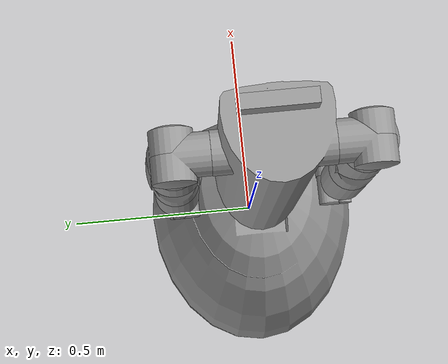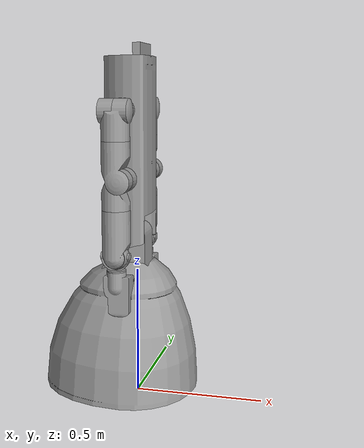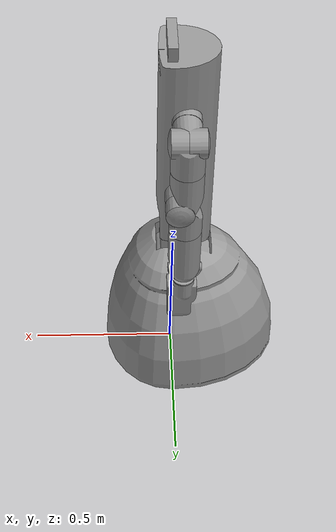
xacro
<?xml version="1.0"?>
<robot name="smartpal5" xmlns:xacro="http://ros.org/wiki/xacro">
  <!-- Used for fixing all components to 'world' frame of RViz and Gazebo 'world' -->
  <link name="world_link"/>

  <joint name="world_smartpal5_joint" type="fixed">
	  <parent link="world_link"/>
    <child link="smartpal5_link"/>
    <origin xyz="0 0 0" rpy="0 0 0"/>
  </joint>

  <!-- Defines the components tags -->
  <xacro:include filename="$(find smartpal5_description)/urdf/smartpal5.urdf.xacro" />
</robot>

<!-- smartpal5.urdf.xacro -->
<robot name="smartpal5" xmlns:xacro="http://ros.org/wiki/xacro">

	<!-- Base, Vehicle -->
  <link name="smartpal5_link"/>

  <joint name="smartpal5_x_joint" type="prismatic">
	  <parent link="smartpal5_link"/>
    <child link="smartpal5_x_link"/>
    <origin xyz="0 0 0" rpy="0 0 0"/>
    <limit effort="1000.0" lower="-5." upper="5." velocity="0.5"/>
  </joint>

  <link name="smartpal5_x_link"/>

  <joint name="smartpal5_y_joint" type="prismatic">
    <parent link="smartpal5_x_link"/>
    <child link="smartpal5_y_link"/>
    <origin xyz="0 0 0" rpy="0 0 1.57075"/>
    <limit effort="1000.0" lower="-5." upper="5." velocity="0.5"/>
  </joint>

  <link name="smartpal5_y_link"/>

  <joint name="smartpal5_yaw_joint" type="continuous">
	  <parent link="smartpal5_y_link"/>
		<child link="base_footprint"/>
		<origin xyz="0 0 0" rpy="0 0 -1.57075"/>
    <axis xyz="0 0 1"/>
	</joint>

  <link name="base_footprint"/>

	<joint name="base_footprint_joint" type="fixed">
    <parent link="base_footprint"/>
	  <child link="base_link"/>
		<origin xyz="0 0 0" rpy="0 0 0"/>
	</joint>

	<link name="base_link">
		<visual>
			<geometry>
				<mesh filename="package://smartpal5_description/meshes/visual/Pal5_body_vehicle.dae"/>
			</geometry>
			<origin xyz="0 0 0" rpy="0 0 0"/> <!-- Offset for wheels already included in the mesh definition -->
			<material name="grey"/>
		</visual>
		<collision>
			<geometry>
				<mesh filename="package://smartpal5_description/meshes/collision/Pal5_body_vehicle.dae"/>
			</geometry>
			<origin xyz="0 0 0" rpy="0 0 0"/>
		</collision>
		<inertial>
			<origin xyz="0 0 0.0375" rpy="0 0 0"/>
			<mass value="27"/>
			<inertia ixx="1.0" ixy="0.0" ixz="0.0" iyy="1.0" iyz="0.0" izz="1.0"/>
		</inertial>
	</link>

	<!-- Lumbar -->
	<joint name="lumbar_lower_joint" type="revolute">
	  <parent link="base_link"/>
		<child link="lumbar_lower_link"/>
		<origin xyz="0 0 0.4365" rpy="-1.57075 0 0"/>
		<axis xyz="0 0 1"/>
		<limit lower="-0.2" upper="0.00872664625997165" effort="100.0" velocity="1.0"/>
	</joint>

	<link name="lumbar_lower_link">
		<visual>
			<geometry>
				<mesh filename="package://smartpal5_description/meshes/visual/Pal5_body_lumbar-J1.dae"/>
			</geometry>
			<origin xyz="0 0 0" rpy="0 0 0"/>
			<material name="grey"/>
		</visual>
		<collision>
			<geometry>
				<mesh filename="package://smartpal5_description/meshes/collision/Pal5_body_lumbar-J1.dae"/>
			</geometry>
			<origin xyz="0 0 0" rpy="0 0 0"/>
		</collision>
		<inertial>
			<origin xyz="0 0 -0.1" rpy="0 0 0"/>
			<mass value="6"/>
			<inertia ixx="1.0" ixy="0.0" ixz="0.0" iyy="1.0" iyz="0.0" izz="1.0"/>
		</inertial>
	</link>

	<joint name="lumbar_upper_joint" type="revolute">
		<parent link="lumbar_lower_link"/>
		<child link="lumbar_upper_link"/>
		<origin xyz="0 -0.21 0" rpy="0 0 0"/>
		<axis xyz="0 0 1"/>
		<limit lower="-0.00872664625997165" upper="2.10312174865317" effort="100.0" velocity="1.0"/>
	</joint>

	<link name="lumbar_upper_link">
		<visual>
			<geometry>
				<mesh filename="package://smartpal5_description/meshes/visual/Pal5_body_lumbar-J2.dae"/>
			</geometry>
			<origin rpy="0 0 0" xyz="0 0 0"/>
			<material name="grey"/>
		</visual>
		<collision>
			<geometry>
				<mesh filename="package://smartpal5_description/meshes/collision/Pal5_body_lumbar-J2.dae"/>
			</geometry>
			<origin rpy="0 0 0" xyz="0 0 0"/>
		</collision>
		<inertial>
			<origin xyz="0.11 0 0.25" rpy="0 0 0"/>
			<mass value="30"/>
			<inertia ixx="1.0" ixy="0.0" ixz="0.0" iyy="1.0" iyz="0.0" izz="1.0"/>
		</inertial>
	</link>

  <!-- RGB-D Camera -->
  <joint name="head_camera_joint" type="fixed">
		<parent link="lumbar_upper_link"/>
		<child link="camera_link"/>
		<origin xyz="0.02 -0.7 0" rpy="1.57075 0 0"/>
	</joint>

  <link name="camera_link">
	  <visual>
			<geometry>
				<box size="0.03 0.15 0.05"/>
			</geometry>
			<origin xyz="0 0 0" rpy="0 0 0"/>
			<material name="grey"/>
		</visual>
		<collision>
			<geometry>
				<box size="0.05 0.2 0.08"/>
			</geometry>
			<origin xyz="0 0 0" rpy="0 0 0"/>
		</collision>
		<inertial>
		    <origin xyz="0 0 0" rpy="0 0 0"/>
			<mass value="0.5"/>
			<inertia ixx="1.0" ixy="0.0" ixz="0.0" iyy="1.0" iyz="0.0" izz="1.0"/>
		</inertial>
	</link>

	<!-- Left Arm -->
  <joint name="l_arm_j1_joint" type="revolute">
		<parent link="lumbar_upper_link"/>
		<child link="l_arm_j1_link"/>
		<origin xyz="-0.025 -0.480 0.200" rpy="3.14159 0 0"/>
		<axis xyz="0 0 1"/>
		<limit lower="-0.76" upper="3.12" effort="100.0" velocity="1.0"/>
	</joint>

	<link name="l_arm_j1_link">
		<visual>
			<geometry>
				<mesh filename="package://smartpal5_description/meshes/visual/Pal5_leftArm_J1.dae"/>
			</geometry>
			<origin xyz="0 0 0" rpy="0 0 0"/>
			<material name="grey"/>
		</visual>
		<collision>
			<geometry>
				<mesh filename="package://smartpal5_description/meshes/collision/Pal5_leftArm_J1.dae"/>
			</geometry>
			<origin xyz="0 0 0" rpy="0 0 0"/>
		</collision>
		<inertial>
			<origin xyz="0 0 -0.1" rpy="0 0 0"/>
			<mass value="0.6"/>
			<inertia ixx="1.0" ixy="0.0" ixz="0.0" iyy="1.0" iyz="0.0" izz="1.0"/>
		</inertial>
	</link>

	<joint name="l_arm_j2_joint" type="revolute">
		<parent link="l_arm_j1_link"/>
		<child link="l_arm_j2_link"/>
		<origin xyz="0 0 0" rpy="1.57075 3.14159 1.57075"/>
		<axis xyz="0 0 -1"/>
		<limit lower="-1.8" upper="0.21" effort="100.0" velocity="1.0"/>
	</joint>

	<link name="l_arm_j2_link">
		<visual>
			<geometry>
				<mesh filename="package://smartpal5_description/meshes/visual/Pal5_leftArm_J2.dae"/>
			</geometry>
			<origin rpy="0 0 0" xyz="0 0 0"/>
			<material name="grey"/>
		</visual>
		<collision>
			<geometry>
				<mesh filename="package://smartpal5_description/meshes/collision/Pal5_leftArm_J2.dae"/>
			</geometry>
			<origin rpy="0 0 0" xyz="0 0 0"/>
		</collision>
		<inertial>
			<origin xyz="0 0 -0.1" rpy="0 0 0"/>
			<mass value="0.6"/>
			<inertia ixx="1.0" ixy="0.0" ixz="0.0" iyy="1.0" iyz="0.0" izz="1.0"/>
		</inertial>
	</link>

	<joint name="l_arm_j3_joint" type="revolute">
		<parent link="l_arm_j2_link"/>
		<child link="l_arm_j3_link"/>
		<origin xyz="0 0 0" rpy="1.57075 1.57075 1.57075"/>
		<axis xyz="0 0 -1"/>
		<limit lower="-2.0" upper="2.0" effort="100.0" velocity="1.0"/>
	</joint>

	<link name="l_arm_j3_link">
		<visual>
			<geometry>
				<mesh filename="package://smartpal5_description/meshes/visual/Pal5_leftArm_J3.dae"/>
			</geometry>
			<origin rpy="0 0 0" xyz="0 0 0"/>
			<material name="grey"/>
		</visual>
		<collision>
			<geometry>
				<mesh filename="package://smartpal5_description/meshes/collision/Pal5_leftArm_J3.dae"/>
			</geometry>
			<origin rpy="0 0 0" xyz="0 0 0"/>
		</collision>
		<inertial>
			<origin xyz="0 0 0" rpy="0 0 0"/>
			<mass value="1"/>
			<inertia ixx="1.0" ixy="0.0" ixz="0.0" iyy="1.0" iyz="0.0" izz="1.0"/>
		</inertial>
	</link>

	<joint name="l_arm_j4_joint" type="revolute">
		<parent link="l_arm_j3_link"/>
		<child link="l_arm_j4_link"/>
		<origin xyz="-0.02 0.0 0.25" rpy="-1.57075 0 3.14159"/>
		<axis xyz="0 0 1"/>
		<limit lower="-0.0" upper="2.2" effort="100.0" velocity="1.0"/>
	</joint>

	<link name="l_arm_j4_link">
		<visual>
			<geometry>
				<mesh filename="package://smartpal5_description/meshes/visual/Pal5_leftArm_J4.dae"/>
			</geometry>
			<origin rpy="0 0 0" xyz="0 0 0"/>
			<material name="grey"/>
		</visual>
		<collision>
			<geometry>
				<mesh filename="package://smartpal5_description/meshes/collision/Pal5_leftArm_J4.dae"/>
			</geometry>
			<origin rpy="0 0 0" xyz="0 0 0"/>
		</collision>
		<inertial>
			<origin xyz="0 0 -0.3" rpy="0 0 0"/>
			<mass value="0.6"/>
			<inertia ixx="1.0" ixy="0.0" ixz="0.0" iyy="1.0" iyz="0.0" izz="1.0"/>
		</inertial>
	</link>

	<joint name="l_arm_j5_joint" type="revolute">
		<parent link="l_arm_j4_link"/>
		<child link="l_arm_j5_link"/>
		<origin xyz="-0.02 0.0 0.0" rpy="1.57075 0 0"/>
		<axis xyz="0 0 -1"/>
		<limit lower="-2.0" upper="2.0" effort="100.0" velocity="1.0"/>
	</joint>

	<link name="l_arm_j5_link">
		<visual>
			<geometry>
				<mesh filename="package://smartpal5_description/meshes/visual/Pal5_leftArm_J5.dae"/>
			</geometry>
			<origin rpy="0 0 0" xyz="0 0 0"/>
			<material name="grey"/>
		</visual>
		<collision>
			<geometry>
				<mesh filename="package://smartpal5_description/meshes/collision/Pal5_leftArm_J5.dae"/>
			</geometry>
			<origin rpy="0 0 0" xyz="0 0 0"/>
		</collision>
		<inertial>
			<origin xyz="0 0 0.1" rpy="0 0 0"/>
			<mass value="0.4"/>
			<inertia ixx="1.0" ixy="0.0" ixz="0.0" iyy="1.0" iyz="0.0" izz="1.0"/>
		</inertial>
	</link>

	<joint name="l_arm_j6_joint" type="revolute">
		<parent link="l_arm_j5_link"/>
		<child link="l_arm_j6_link"/>
		<origin xyz="0.0 0.0 0.28" rpy="-1.57075 1.57075 0"/>
		<axis xyz="0 0 1"/>
		<limit lower="-0.25" upper="0.75" effort="100.0" velocity="1.0"/>
	</joint>

	<link name="l_arm_j6_link">
		<visual>
			<geometry>
				<mesh filename="package://smartpal5_description/meshes/visual/Pal5_leftArm_J6.dae"/>
			</geometry>
			<origin rpy="0 0 0" xyz="0 0 0"/>
			<material name="grey"/>
		</visual>
		<collision>
			<geometry>
				<mesh filename="package://smartpal5_description/meshes/collision/Pal5_leftArm_J6.dae"/>
			</geometry>
			<origin rpy="0 0 0" xyz="0 0 0"/>
		</collision>
		<inertial>
			<origin xyz="-0.1 0 0" rpy="0 0 0"/>
			<mass value="0.4"/>
			<inertia ixx="1.0" ixy="0.0" ixz="0.0" iyy="1.0" iyz="0.0" izz="1.0"/>
		</inertial>
	</link>

	<joint name="l_arm_j7_joint" type="revolute">
		<parent link="l_arm_j6_link"/>
		<child link="l_arm_j7_link"/>
		<origin xyz="0.0 0.0 0" rpy="1.57075 3.14159 0"/>
		<axis xyz="0 0 1"/>
		<limit lower="-1.5" upper="0.8" effort="100.0" velocity="1.0"/>
	</joint>

	<link name="l_arm_j7_link">
		<visual>
			<geometry>
				<mesh filename="package://smartpal5_description/meshes/visual/Pal5_leftArm_J7.dae"/>
			</geometry>
			<origin rpy="0 0 0" xyz="0 0 0"/>
			<material name="grey"/>
		</visual>
		<collision>
			<geometry>
				<mesh filename="package://smartpal5_description/meshes/collision/Pal5_leftArm_J7.dae"/>
			</geometry>
			<origin rpy="0 0 0" xyz="0 0 0"/>
		</collision>
		<inertial>
			<origin xyz="0 0 -0.1" rpy="0 0 0"/>
			<mass value="0.4"/>
			<inertia ixx="1.0" ixy="0.0" ixz="0.0" iyy="1.0" iyz="0.0" izz="1.0"/>
		</inertial>
	</link>

	<!-- Left Gripper -->
	<joint name="l_gripper_joint" type="fixed">
		<parent link="l_arm_j7_link"/>
		<child link="l_gripper_link"/>
		<origin xyz="0.056 0 0" rpy="3.14159 3.14159 1.57075"/>
		<axis xyz="0 0 1"/>
	</joint>

	<link name="l_gripper_link">
		<visual>
			<geometry>
				<mesh filename="package://smartpal5_description/meshes/visual/Pal5_leftGripper_gripper.dae"/>
			</geometry>
			<origin rpy="0 0 0" xyz="0 0 0"/>
			<material name="grey"/>
		</visual>
		<collision>
			<geometry>
				<mesh filename="package://smartpal5_description/meshes/collision/Pal5_leftGripper_gripper.dae"/>
			</geometry>
			<origin rpy="0 0 0" xyz="0 0 0"/>
		</collision>
		<inertial>
			<origin xyz="0 0 -0.1" rpy="0 0 0"/>
			<mass value="0.6"/>
			<inertia ixx="1.0" ixy="0.0" ixz="0.0" iyy="1.0" iyz="0.0" izz="1.0"/>
		</inertial>
	</link>

  <joint name="l_end_effector_joint" type="fixed">
    <origin xyz="0.01 0.11 0" rpy="0 0 0"/>
    <parent link="l_gripper_link"/>
    <child link="l_end_effector_link"/>
  </joint>

  <link name="l_end_effector_link">
    <visual>
      <origin rpy="0 0 0" xyz="0 0 0"/>
      <geometry>
        <box size="0.001 0.001 0.001"/>
      </geometry>
    </visual>
    <collision>
      <origin rpy="0 0 0" xyz="0 0 0"/>
      <geometry>
        <box size="0.001 0.001 0.001"/>
      </geometry>
    </collision>
  </link>

	<joint name="l_gripper_thumb_joint" type="revolute">
		<parent link="l_gripper_link"/>
		<child link="l_gripper_thumb_link"/>
		<origin xyz="0.027 0.042 0.0" rpy="0 0 0"/>
		<axis xyz="0 0 1"/>
		<limit lower="-1.0122" upper="0.1396" effort="100.0" velocity="1.0"/>
	</joint>

	<link name="l_gripper_thumb_link">
		<visual>
			<geometry>
				<mesh filename="package://smartpal5_description/meshes/visual/Pal5_leftGripper_g-thumb.dae"/>
			</geometry>
			<origin rpy="0 0 0" xyz="0 0 0"/>
			<material name="grey"/>
		</visual>
		<collision>
			<geometry>
				<mesh filename="package://smartpal5_description/meshes/collision/Pal5_leftGripper_g-thumb.dae"/>
			</geometry>
			<origin rpy="0 0 0" xyz="0 0 0"/>
		</collision>
		<inertial>
			<origin xyz="0 0 -0.1" rpy="0 0 0"/>
			<mass value="0.4"/>
			<inertia ixx="1.0" ixy="0.0" ixz="0.0" iyy="1.0" iyz="0.0" izz="1.0"/>
		</inertial>
	</link>

	<!-- Right Arm -->
	<joint name="r_arm_j1_joint" type="revolute">
		<parent link="lumbar_upper_link"/>
		<child link="r_arm_j1_link"/>
		<origin xyz="-0.025 -0.480 -0.200" rpy="3.14159 0 0"/>
		<axis xyz="0 0 1"/>
		<limit lower="-0.76" upper="3.12" effort="100.0" velocity="1.0"/>
	</joint>

	<link name="r_arm_j1_link">
		<visual>
			<geometry>
				<mesh filename="package://smartpal5_description/meshes/visual/Pal5_rightArm_J1.dae"/>
			</geometry>
			<origin xyz="0 0 0" rpy="0 0 0"/>
			<material name="grey"/>
		</visual>
		<collision>
			<geometry>
				<mesh filename="package://smartpal5_description/meshes/collision/Pal5_rightArm_J1.dae"/>
			</geometry>
			<origin xyz="0 0 0" rpy="0 0 0"/>
		</collision>
		<inertial>
			<origin xyz="0 0 -0.1" rpy="0 0 0"/>
			<mass value="0.6"/>
			<inertia ixx="1.0" ixy="0.0" ixz="0.0" iyy="1.0" iyz="0.0" izz="1.0"/>
		</inertial>
	</link>

	<joint name="r_arm_j2_joint" type="revolute">
		<parent link="r_arm_j1_link"/>
		<child link="r_arm_j2_link"/>
		<origin xyz="0 0 0" rpy="-1.57075 0 -1.57075"/>
		<axis xyz="0 0 1"/>
		<limit lower="-1.8" upper="0.21" effort="100.0" velocity="1.0"/>
	</joint>

	<link name="r_arm_j2_link">
		<visual>
			<geometry>
				<mesh filename="package://smartpal5_description/meshes/visual/Pal5_rightArm_J2.dae"/>
			</geometry>
			<origin rpy="0 0 0" xyz="0 0 0"/>
			<material name="grey"/>
		</visual>
		<collision>
			<geometry>
				<mesh filename="package://smartpal5_description/meshes/collision/Pal5_rightArm_J2.dae"/>
			</geometry>
			<origin rpy="0 0 0" xyz="0 0 0"/>
		</collision>
		<inertial>
			<origin xyz="0 0 -0.1" rpy="0 0 0"/>
			<mass value="0.6"/>
			<inertia ixx="1.0" ixy="0.0" ixz="0.0" iyy="1.0" iyz="0.0" izz="1.0"/>
		</inertial>
	</link>

	<joint name="r_arm_j3_joint" type="revolute">
		<parent link="r_arm_j2_link"/>
		<child link="r_arm_j3_link"/>
		<origin xyz="0 0 0" rpy="1.57075 1.57075 1.57075"/>
		<axis xyz="0 0 1"/>
		<limit lower="-2.0" upper="2.0" effort="100.0" velocity="1.0"/>
	</joint>

	<link name="r_arm_j3_link">
		<visual>
			<geometry>
				<mesh filename="package://smartpal5_description/meshes/visual/Pal5_rightArm_J3.dae"/>
			</geometry>
			<origin rpy="0 0 0" xyz="0 0 0"/>
			<material name="grey"/>
		</visual>
		<collision>
			<geometry>
				<mesh filename="package://smartpal5_description/meshes/collision/Pal5_rightArm_J3.dae"/>
			</geometry>
			<origin rpy="0 0 0" xyz="0 0 0"/>
		</collision>
		<inertial>
			<origin xyz="0 0 0" rpy="0 0 0"/>
			<mass value="1"/>
			<inertia ixx="1.0" ixy="0.0" ixz="0.0" iyy="1.0" iyz="0.0" izz="1.0"/>
		</inertial>
	</link>

	<joint name="r_arm_j4_joint" type="revolute">
		<parent link="r_arm_j3_link"/>
		<child link="r_arm_j4_link"/>
		<origin xyz="-0.02 0.0 0.25" rpy="-1.57075 0 3.14159"/>
		<axis xyz="0 0 1"/>
		<limit lower="-0.0" upper="2.2" effort="100.0" velocity="1.0"/>
	</joint>

	<link name="r_arm_j4_link">
		<visual>
			<geometry>
				<mesh filename="package://smartpal5_description/meshes/visual/Pal5_rightArm_J4.dae"/>
			</geometry>
			<origin rpy="0 0 0" xyz="0 0 0"/>
			<material name="grey"/>
		</visual>
		<collision>
			<geometry>
				<mesh filename="package://smartpal5_description/meshes/collision/Pal5_rightArm_J4.dae"/>
			</geometry>
			<origin rpy="0 0 0" xyz="0 0 0"/>
		</collision>
		<inertial>
			<origin xyz="0 0 -0.3" rpy="0 0 0"/>
			<mass value="0.6"/>
			<inertia ixx="1.0" ixy="0.0" ixz="0.0" iyy="1.0" iyz="0.0" izz="1.0"/>
		</inertial>
	</link>

	<joint name="r_arm_j5_joint" type="revolute">
		<parent link="r_arm_j4_link"/>
		<child link="r_arm_j5_link"/>
		<origin xyz="-0.02 0.0 0.0" rpy="1.57075 0 0"/>
		<axis xyz="0 0 1"/>
		<limit lower="-2.0" upper="2.0" effort="100.0" velocity="1.0"/>
	</joint>

	<link name="r_arm_j5_link">
		<visual>
			<geometry>
				<mesh filename="package://smartpal5_description/meshes/visual/Pal5_rightArm_J5.dae"/>
			</geometry>
			<origin rpy="0 0 0" xyz="0 0 0"/>
			<material name="grey"/>
		</visual>
		<collision>
			<geometry>
				<mesh filename="package://smartpal5_description/meshes/collision/Pal5_rightArm_J5.dae"/>
			</geometry>
			<origin rpy="0 0 0" xyz="0 0 0"/>
		</collision>
		<inertial>
			<origin xyz="0 0 0.1" rpy="0 0 0"/>
			<mass value="0.4"/>
			<inertia ixx="1.0" ixy="0.0" ixz="0.0" iyy="1.0" iyz="0.0" izz="1.0"/>
		</inertial>
	</link>

	<joint name="r_arm_j6_joint" type="revolute">
		<parent link="r_arm_j5_link"/>
		<child link="r_arm_j6_link"/>
		<origin xyz="0.0 0.0 0.28" rpy="-1.57075 1.57075 0"/>
		<axis xyz="0 0 1"/>
		<limit lower="-0.25" upper="0.75" effort="100.0" velocity="1.0"/>
	</joint>

	<link name="r_arm_j6_link">
		<visual>
			<geometry>
				<mesh filename="package://smartpal5_description/meshes/visual/Pal5_rightArm_J6.dae"/>
			</geometry>
			<origin rpy="0 0 0" xyz="0 0 0"/>
			<material name="grey"/>
		</visual>
		<collision>
			<geometry>
				<mesh filename="package://smartpal5_description/meshes/collision/Pal5_rightArm_J6.dae"/>
			</geometry>
			<origin rpy="0 0 0" xyz="0 0 0"/>
		</collision>
		<inertial>
			<origin xyz="-0.1 0 0" rpy="0 0 0"/>
			<mass value="0.4"/>
			<inertia ixx="1.0" ixy="0.0" ixz="0.0" iyy="1.0" iyz="0.0" izz="1.0"/>
		</inertial>
	</link>

	<joint name="r_arm_j7_joint" type="revolute">
		<parent link="r_arm_j6_link"/>
		<child link="r_arm_j7_link"/>
		<origin xyz="0.0 0.0 0" rpy="1.57075 3.14159 0"/>
		<axis xyz="0 0 -1"/>
		<limit lower="-1.5" upper="0.8" effort="100.0" velocity="1.0"/>
	</joint>

	<link name="r_arm_j7_link">
		<visual>
			<geometry>
				<mesh filename="package://smartpal5_description/meshes/visual/Pal5_rightArm_J7.dae"/>
			</geometry>
			<origin rpy="0 0 0" xyz="0 0 0"/>
			<material name="grey"/>
		</visual>
		<collision>
			<geometry>
				<mesh filename="package://smartpal5_description/meshes/collision/Pal5_rightArm_J7.dae"/>
			</geometry>
			<origin rpy="0 0 0" xyz="0 0 0"/>
		</collision>
		<inertial>
			<origin xyz="0 0 -0.1" rpy="0 0 0"/>
			<mass value="0.4"/>
			<inertia ixx="1.0" ixy="0.0" ixz="0.0" iyy="1.0" iyz="0.0" izz="1.0"/>
		</inertial>
	</link>

	<!-- Right Gripper -->
	<joint name="r_gripper_joint" type="fixed">
		<parent link="r_arm_j7_link"/>
		<child link="r_gripper_link"/>
		<origin xyz="0.056 0 0" rpy="3.14159 3.14159 3.14159"/>
		<axis xyz="0 0 1"/>
	</joint>

	<link name="r_gripper_link">
		<visual>
			<geometry>
				<mesh filename="package://smartpal5_description/meshes/visual/Pal5_rightGripper_gripper.dae"/>
			</geometry>
			<origin rpy="0 0 0" xyz="0 0 0"/>
			<material name="grey"/>
		</visual>
		<collision>
			<geometry>
				<mesh filename="package://smartpal5_description/meshes/collision/Pal5_rightGripper_gripper.dae"/>
			</geometry>
			<origin rpy="0 0 0" xyz="0 0 0"/>
		</collision>
		<inertial>
			<origin xyz="0 0 -0.1" rpy="0 0 0"/>
			<mass value="0.6"/>
			<inertia ixx="1.0" ixy="0.0" ixz="0.0" iyy="1.0" iyz="0.0" izz="1.0"/>
		</inertial>
	</link>

  <joint name="r_end_effector_joint" type="fixed">
    <origin xyz="0.11 0.01 0" rpy="0 0 0"/>
    <parent link="r_gripper_link"/>
    <child link="r_end_effector_link"/>
  </joint>

  <link name="r_end_effector_link">
    <visual>
      <origin rpy="0 0 0" xyz="0 0 0"/>
      <geometry>
        <box size="0.001 0.001 0.001"/>
      </geometry>
    </visual>
    <collision>
      <origin rpy="0 0 0" xyz="0 0 0"/>
      <geometry>
        <box size="0.001 0.001 0.001"/>
      </geometry>
    </collision>
  </link>

	<joint name="r_gripper_thumb_joint" type="revolute">
		<parent link="r_gripper_link"/>
		<child link="r_gripper_thumb_link"/>
		<origin xyz="0.042 0.027 0.0" rpy="0 0 -1.57075"/>
		<axis xyz="0 0 -1"/>
		<limit lower="-1.0122" upper="0.1396" effort="100.0" velocity="1.0"/>
  </joint>

	<link name="r_gripper_thumb_link">
		<visual>
			<geometry>
				<mesh filename="package://smartpal5_description/meshes/visual/Pal5_rightGripper_g-thumb.dae"/>
			</geometry>
			<origin rpy="0 0 0" xyz="0 0 0"/>
			<material name="grey"/>
		</visual>
		<collision>
			<geometry>
				<mesh filename="package://smartpal5_description/meshes/collision/Pal5_rightGripper_g-thumb.dae"/>
			</geometry>
			<origin rpy="0 0 0" xyz="0 0 0"/>
		</collision>
		<inertial>
			<origin xyz="0 0 -0.1" rpy="0 0 0"/>
			<mass value="0.4"/>
			<inertia ixx="1.0" ixy="0.0" ixz="0.0" iyy="1.0" iyz="0.0" izz="1.0"/>
		</inertial>
  </link>

</robot>
